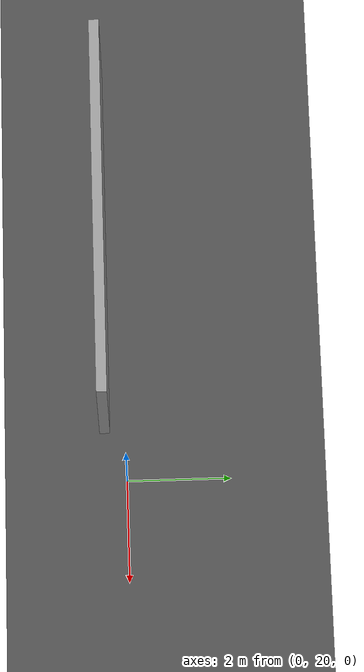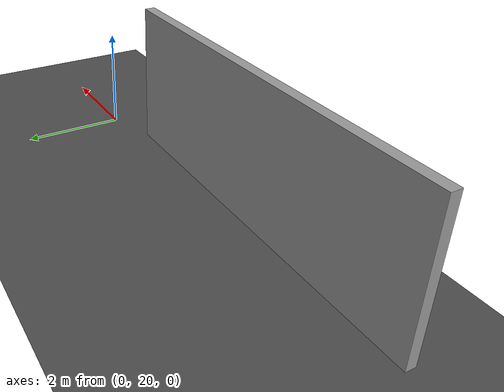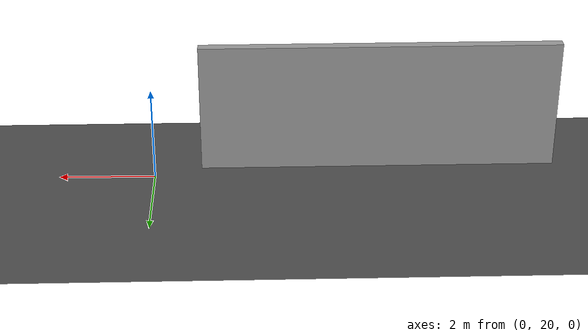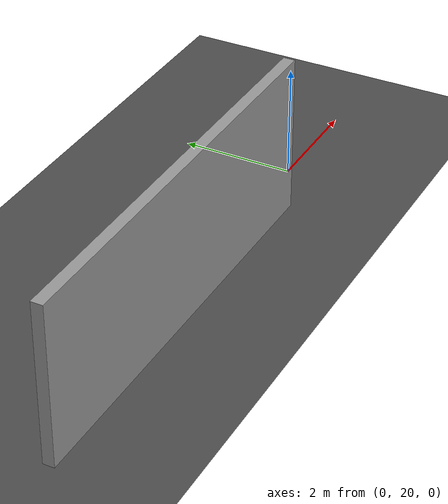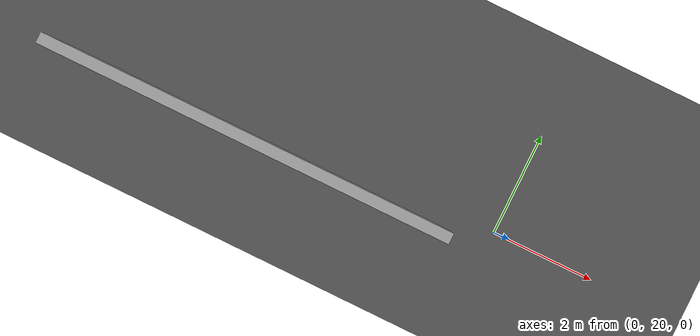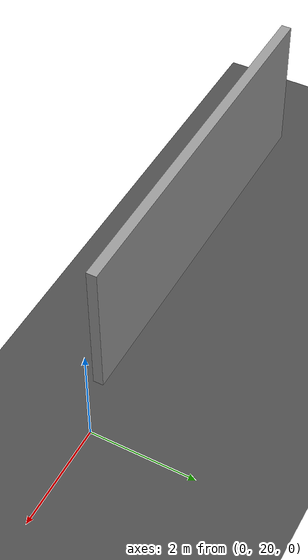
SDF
<sdf version="1.6">
 <world name="default">
  <model name="ground_plane">
   <static>1</static>
   <link name="link">
    <collision name="collision">
     <geometry><plane><normal>0 0 1</normal><size>120 120</size></plane></geometry>
     <surface><friction><ode><mu>100</mu><mu2>50</mu2></ode></friction></surface>
    </collision>
    <visual name="visual">
     <cast_shadows>0</cast_shadows>
     <geometry><plane><normal>0 0 1</normal><size>120 120</size></plane></geometry>
     <material><script><uri>model://materials/gazebo.material</uri><name>Gazebo/Asphalt</name></script></material>
    </visual>
   </link>
  </model>
  <model name="grey_wall">
   <static>1</static>
   <link name="link">
    <pose>0 0 1.4 0 -0 0</pose>
    <collision name="collision"><geometry><box><size>7.5 0.2 2.8</size></box></geometry></collision>
    <visual name="visual">
     <cast_shadows>0</cast_shadows>
     <geometry><box><size>7.5 0.2 2.8</size></box></geometry>
     <material>
      <script>
       <uri>model://grey_wall/materials/scripts</uri>
       <uri>model://grey_wall/materials/textures</uri>
       <name>vrc/grey_wall</name>
      </script>
     </material>
    </visual>
   </link>
   <pose>-4.71834 19.5824 0 0 -0 0</pose>
  </model>
 </world>
</sdf>
